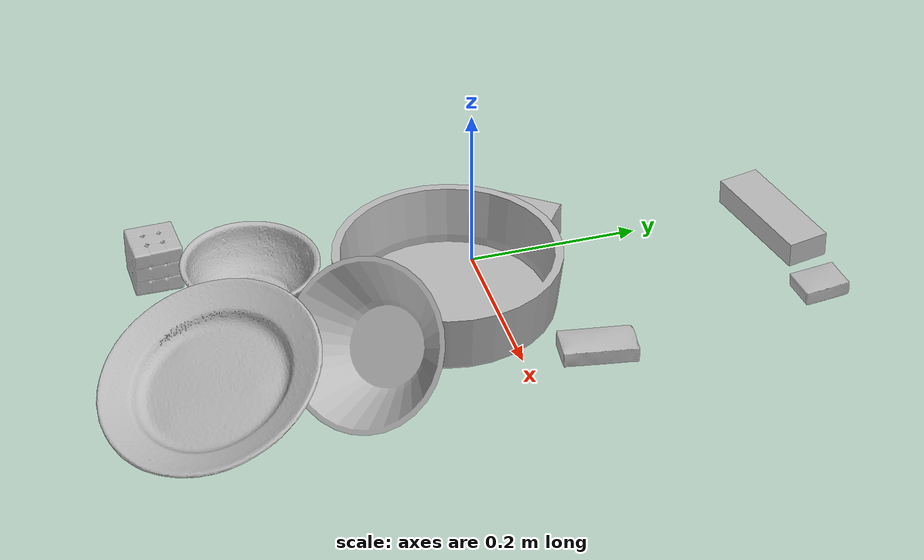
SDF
<sdf version="1.4">
  <world name="default">
    <light name="light1" type="point">
      <pose>0 0 1 0 0 0</pose>
      <diffuse>3 3 3 1</diffuse>
      <specular>3 3 3 1</specular>
    </light>
    <light name="light2" type="point">
      <pose>0 0.5 2 0 0 0</pose>
      <diffuse>1 1 1 1</diffuse>
      <specular>1 1 1 1</specular>
    </light>
    <light name="light3" type="point">
      <pose>0 0.5 2 0 0 0</pose>
      <diffuse>3 3 3 1</diffuse>
      <specular>3 3 3 1</specular>
    </light>
    <scene>
      <ambient>0.7 0.7 0.7</ambient>
    </scene>
    <model name="box1">
      <link name="link_box1">
        <collision name="default">
          <geometry>
            <mesh>
              <uri>model://gelatin_box/collision_meshes/collision.obj</uri>
              <scale>1.0 1.0 1.0</scale>
            </mesh>
          </geometry>
          <surface>
            <friction>
              <ode>
                <mu>0.5</mu>
                <mu2>0.5</mu2>
              </ode>
            </friction>
          <contact>
        <ode>
            <max_vel>0</max_vel>
            <min_depth>0.0001</min_depth>
            <kp>1e8</kp>
        </ode>
    </contact></surface>
        </collision>
        <visual name="default">
          <geometry>
            <mesh>
              <uri>model://gelatin_box/visual_meshes/visual.dae</uri>
              <scale>1.0 1.0 1.0</scale>
            </mesh>
          </geometry>
        </visual>
        <inertial>
          <mass>0.1979130208492279</mass>
          <pose>0.0004319618456065655 0.00011156871914863586 -0.0003640321083366871 -0.0010503722055948273 -0.004755818222760974 0.016440559471883928</pose>
          <inertia>
            <ixx>0.00013971045</ixx>
            <iyy>9.9794444e-05</iyy>
            <izz>0.00021267045</izz>
            <ixy>0</ixy>
            <ixz>0</ixz>
            <iyz>0</iyz>
          </inertia>
        </inertial>
      </link>
      <pose>0.10116589814424515 -0.3444327712059021 0.015168321318924427 0.005597532626040295 -0.00730426377954499 -0.48075222246340954</pose>
    </model>
    <model name="box11">
      <link name="link_box11">
        <collision name="default">
          <geometry>
            <mesh>
              <uri>model://sugar_box/collision_meshes/collision.obj</uri>
              <scale>0.5 0.5 0.5</scale>
            </mesh>
          </geometry>
          <surface>
            <friction>
              <ode>
                <mu>0.5</mu>
                <mu2>0.5</mu2>
              </ode>
            </friction>
          <contact>
        <ode>
            <max_vel>0</max_vel>
            <min_depth>0.0001</min_depth>
            <kp>1e8</kp>
        </ode>
    </contact></surface>
        </collision>
        <visual name="default">
          <geometry>
            <mesh>
              <uri>model://sugar_box/visual_meshes/visual.dae</uri>
              <scale>0.5 0.5 0.5</scale>
            </mesh>
          </geometry>
        </visual>
        <inertial>
          <mass>0.10992158949375153</mass>
          <pose>0.0005171863595023751 1.924554817378521e-05 -0.00018182402709499002 -0.00040462650409139634 0.0010506636387973133 0.002615378555960767</pose>
          <inertia>
            <ixx>2.2896586e-05</ixx>
            <iyy>7.400649e-05</iyy>
            <izz>8.8594585e-05</izz>
            <ixy>0</ixy>
            <ixz>0</ixz>
            <iyz>0</iyz>
          </inertia>
        </inertial>
      </link>
      <pose>0.21224120259284973 0.08437597006559372 0.011399306356906891 0.00077518049961358 -0.02343264532400333 -1.702483816187283</pose>
    </model>
    <model name="box2">
      <link name="link_box2">
        <collision name="default">
          <geometry>
            <mesh>
              <uri>model://jenga/collision_meshes/collision.obj</uri>
              <scale>1.0 1.0 1.0</scale>
            </mesh>
          </geometry>
          <surface>
            <friction>
              <ode>
                <mu>0.5</mu>
                <mu2>0.5</mu2>
              </ode>
            </friction>
          <contact>
        <ode>
            <max_vel>0</max_vel>
            <min_depth>0.0001</min_depth>
            <kp>1e8</kp>
        </ode>
    </contact></surface>
        </collision>
        <visual name="default">
          <geometry>
            <mesh>
              <uri>model://jenga/visual_meshes/visual.dae</uri>
              <scale>1.0 1.0 1.0</scale>
            </mesh>
          </geometry>
        </visual>
        <inertial>
          <mass>0.12651896476745605</mass>
          <pose>-2.502855807051674e-07 -0.00010250010382151231 -4.0923401684267446e-05 0.0 -7.34215461761844e-07 0.0</pose>
          <inertia>
            <ixx>3.5010868e-05</ixx>
            <iyy>0.00023723267</iyy>
            <izz>0.00025326604</izz>
            <ixy>0</ixy>
            <ixz>0</ixz>
            <iyz>0</iyz>
          </inertia>
        </inertial>
      </link>
      <pose>0.040785811841487885 0.35976532101631165 0.014999994076788425 3.4146743823459246e-09 -1.365030658991198e-08 -2.92273683293967</pose>
    </model>
    <model name="box21">
      <link name="link_box21">
        <collision name="default">
          <geometry>
            <mesh>
              <uri>model://wood_block/collision_meshes/collision.obj</uri>
              <scale>0.5 0.5 0.5</scale>
            </mesh>
          </geometry>
          <surface>
            <friction>
              <ode>
                <mu>0.5</mu>
                <mu2>0.5</mu2>
              </ode>
            </friction>
          <contact>
        <ode>
            <max_vel>0</max_vel>
            <min_depth>0.0001</min_depth>
            <kp>1e8</kp>
        </ode>
    </contact></surface>
        </collision>
        <visual name="default">
          <geometry>
            <mesh>
              <uri>model://wood_block/visual_meshes/visual.dae</uri>
              <scale>0.5 0.5 0.5</scale>
            </mesh>
          </geometry>
        </visual>
        <inertial>
          <mass>0.17952100932598114</mass>
          <pose>-2.906657982748584e-06 -0.00028540476341731846 0.00013204291462898254 -0.052208472466385096 -0.005192695659959234 -0.0068613786899108485</pose>
          <inertia>
            <ixx>6.0056565e-05</ixx>
            <iyy>0.0001897187</iyy>
            <izz>0.00018900905</izz>
            <ixy>0</ixy>
            <ixz>0</ixz>
            <iyz>0</iyz>
          </inertia>
        </inertial>
      </link>
      <pose>-0.03195655718445778 0.06164320185780525 0.02252720296382904 -0.01586402300036985 -0.0004157943387035773 -2.2057282693620266</pose>
    </model>
    <model name="box3">
      <link name="link_box3">
        <collision name="default">
          <geometry>
            <mesh>
              <uri>model://rubiks_cube/collision_meshes/collision.obj</uri>
              <scale>1.0 1.0 1.0</scale>
            </mesh>
          </geometry>
          <surface>
            <friction>
              <ode>
                <mu>0.5</mu>
                <mu2>0.5</mu2>
              </ode>
            </friction>
          <contact>
        <ode>
            <max_vel>0</max_vel>
            <min_depth>0.0001</min_depth>
            <kp>1e8</kp>
        </ode>
    </contact></surface>
        </collision>
        <visual name="default">
          <geometry>
            <mesh>
              <uri>model://rubiks_cube/visual_meshes/visual.dae</uri>
              <scale>1.0 1.0 1.0</scale>
            </mesh>
          </geometry>
        </visual>
        <inertial>
          <mass>0.2539031207561493</mass>
          <pose>2.6721041649580002e-05 5.2569666877388954e-05 -7.264316082000732e-06 -0.05467208428881645 -0.09814040742269707 -0.034455380154792534</pose>
          <inertia>
            <ixx>0.00014029852</ixx>
            <iyy>0.00013964424</iyy>
            <izz>0.00014146113</izz>
            <ixy>0</ixy>
            <ixz>0</ixz>
            <iyz>0</iyz>
          </inertia>
        </inertial>
      </link>
      <pose>-0.07027950137853622 -0.36218908429145813 0.02867894433438778 -3.7018132224309616e-06 -1.2894572403810172e-06 1.591633810337369</pose>
    </model>
    <model name="box31">
      <link name="link_box31">
        <collision name="default">
          <geometry>
            <mesh>
              <uri>model://pudding_box/collision_meshes/collision.obj</uri>
              <scale>0.5 0.5 0.5</scale>
            </mesh>
          </geometry>
          <surface>
            <friction>
              <ode>
                <mu>0.5</mu>
                <mu2>0.5</mu2>
              </ode>
            </friction>
          <contact>
        <ode>
            <max_vel>0</max_vel>
            <min_depth>0.0001</min_depth>
            <kp>1e8</kp>
        </ode>
    </contact></surface>
        </collision>
        <visual name="default">
          <geometry>
            <mesh>
              <uri>model://pudding_box/visual_meshes/visual.dae</uri>
              <scale>0.5 0.5 0.5</scale>
            </mesh>
          </geometry>
        </visual>
        <inertial>
          <mass>0.030597222968935966</mass>
          <pose>0.00024474109522998333 0.00040339428232982755 -0.00025944135268218815 0.005213101792545572 -0.006603798718575614 0.020079825159656634</pose>
          <inertia>
            <ixx>8.6471455e-06</ixx>
            <iyy>5.8178607e-06</iyy>
            <izz>1.2769769e-05</izz>
            <ixy>0</ixy>
            <ixz>0</ixz>
            <iyz>0</iyz>
          </inertia>
        </inertial>
      </link>
      <pose>0.17279215157032013 0.3670571744441986 0.009862909093499184 0.022348486097110105 -0.011391707464267736 0.08767550616803853</pose>
    </model>
    <model name="plate1">
      <link name="link_plate1">
        <collision name="default">
          <geometry>
            <mesh>
              <uri>model://pan_tefal/collision_meshes/collision.obj</uri>
              <scale>1.0 1.0 1.0</scale>
            </mesh>
          </geometry>
          <surface>
            <friction>
              <ode>
                <mu>0.5</mu>
                <mu2>0.5</mu2>
              </ode>
            </friction>
          <contact>
        <ode>
            <max_vel>0</max_vel>
            <min_depth>0.0001</min_depth>
            <kp>1e8</kp>
        </ode>
    </contact></surface>
        </collision>
        <visual name="default">
          <geometry>
            <mesh>
              <uri>model://pan_tefal/visual_meshes/visual.dae</uri>
              <scale>1.0 1.0 1.0</scale>
            </mesh>
          </geometry>
        </visual>
        <inertial>
          <mass>1.6321053504943848</mass>
          <pose>-0.00018001697026193142 3.279276279499754e-05 -0.00851493887603283 0.0008190355512640809 -0.00033013448733331557 -0.33186498661790637</pose>
          <inertia>
            <ixx>0.011266344</ixx>
            <iyy>0.011338978</iyy>
            <izz>0.02073917</izz>
            <ixy>0</ixy>
            <ixz>0</ixz>
            <iyz>0</iyz>
          </inertia>
        </inertial>
      </link>
      <pose>0.07445550709962845 -0.05083482339978218 0.03804999962449074 7.084511802830433e-09 -4.082194271166124e-08 0.9766292682075933</pose>
    </model>
    <model name="bowl1">
      <link name="link_bowl1">
        <collision name="default">
          <geometry>
            <mesh>
              <uri>model://bowl/collision_meshes/collision.obj</uri>
              <scale>1.0 1.0 1.0</scale>
            </mesh>
          </geometry>
          <surface>
            <friction>
              <ode>
                <mu>0.5</mu>
                <mu2>0.5</mu2>
              </ode>
            </friction>
          <contact>
        <ode>
            <max_vel>0</max_vel>
            <min_depth>0.0001</min_depth>
            <kp>1e8</kp>
        </ode>
    </contact></surface>
        </collision>
        <visual name="default">
          <geometry>
            <mesh>
              <uri>model://bowl/visual_meshes/visual.dae</uri>
              <scale>1.0 1.0 1.0</scale>
            </mesh>
          </geometry>
        </visual>
        <inertial>
          <mass>0.08853479474782944</mass>
          <pose>0.0002044534485321492 -0.0010302085429430008 -0.0008042657864280045 -0.015764086220495594 0.014546762208611713 0.7140398935341641</pose>
          <inertia>
            <ixx>0.00020337135</ixx>
            <iyy>0.00019882726</iyy>
            <izz>0.00034214073</izz>
            <ixy>0</ixy>
            <ixz>0</ixz>
            <iyz>0</iyz>
          </inertia>
        </inertial>
      </link>
      <pose>0.0016356897540390491 -0.2646253705024719 0.02778000943362713 1.7286468631815544e-08 -1.2248034864564693e-07 -2.778512720965809</pose>
    </model>
    <model name="plate2">
      <link name="link_plate2">
        <collision name="default">
          <geometry>
            <mesh>
              <uri>model://plate/collision_meshes/collision.obj</uri>
              <scale>1.0 1.0 1.0</scale>
            </mesh>
          </geometry>
          <surface>
            <friction>
              <ode>
                <mu>0.5</mu>
                <mu2>0.5</mu2>
              </ode>
            </friction>
          <contact>
        <ode>
            <max_vel>0</max_vel>
            <min_depth>0.0001</min_depth>
            <kp>1e8</kp>
        </ode>
    </contact></surface>
        </collision>
        <visual name="default">
          <geometry>
            <mesh>
              <uri>model://plate/visual_meshes/visual.dae</uri>
              <scale>1.0 1.0 1.0</scale>
            </mesh>
          </geometry>
        </visual>
        <inertial>
          <mass>0.10531359910964966</mass>
          <pose>-0.0006044624024070799 0.00027825951110571623 -0.001056199660524726 0.0022187923451504944 -0.0032254757952566134 0.45260828030698763</pose>
          <inertia>
            <ixx>0.00049265905</ixx>
            <iyy>0.00048794702</iyy>
            <izz>0.0009635677</izz>
            <ixy>0</ixy>
            <ixz>0</ixz>
            <iyz>0</iyz>
          </inertia>
        </inertial>
      </link>
      <pose>0.18827901780605316 -0.35298091173171997 0.0432213693857193 0.28391418453040257 -0.26755542177374053 1.2333399022366336</pose>
    </model>
    <model name="bowl2">
      <link name="link_bowl2">
        <collision name="default">
          <geometry>
            <mesh>
              <uri>model://bowl_a/collision_meshes/collision.obj</uri>
              <scale>1.0 1.0 1.0</scale>
            </mesh>
          </geometry>
          <surface>
            <friction>
              <ode>
                <mu>0.5</mu>
                <mu2>0.5</mu2>
              </ode>
            </friction>
          <contact>
        <ode>
            <max_vel>0</max_vel>
            <min_depth>0.0001</min_depth>
            <kp>1e8</kp>
        </ode>
    </contact></surface>
        </collision>
        <visual name="default">
          <geometry>
            <mesh>
              <uri>model://bowl_a/visual_meshes/visual.dae</uri>
              <scale>1.0 1.0 1.0</scale>
            </mesh>
          </geometry>
        </visual>
        <inertial>
          <mass>0.4180941581726074</mass>
          <pose>0.000278673687716946 4.731199442176148e-05 -0.0013765294570475817 -0.0009805326545729344 -0.001093820496942545 -0.19124076645491772</pose>
          <inertia>
            <ixx>0.0011903334</ixx>
            <iyy>0.0011976411</iyy>
            <izz>0.0021170534</izz>
            <ixy>0</ixy>
            <ixz>0</ixz>
            <iyz>0</iyz>
          </inertia>
        </inertial>
      </link>
      <pose>0.2068084329366684 -0.17155230045318604 0.06415769457817078 -0.876955395731261 -0.44191234622310444 -2.74288088112112</pose>
    </model>
  <physics type="ode">
      <max_contacts>50</max_contacts>
      <ode>
        <solver>
          <type>quick</type>
          <iters>75</iters>
        </solver>
        <constraints>
          <contact_max_correcting_vel>0</contact_max_correcting_vel>
          <contact_surface_layer>0</contact_surface_layer>
        </constraints>
      </ode>
    </physics></world>
</sdf>
